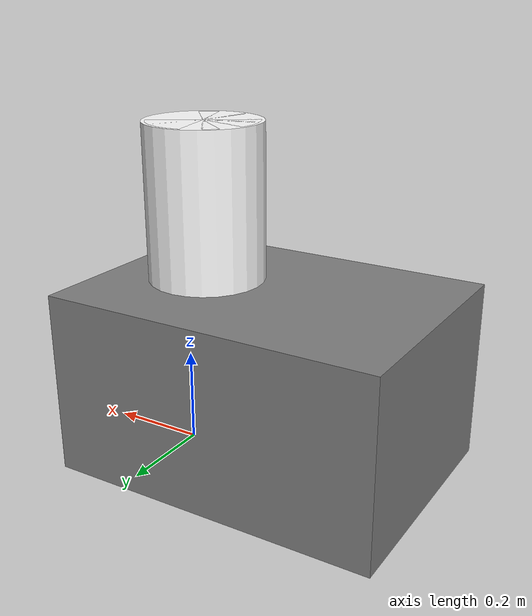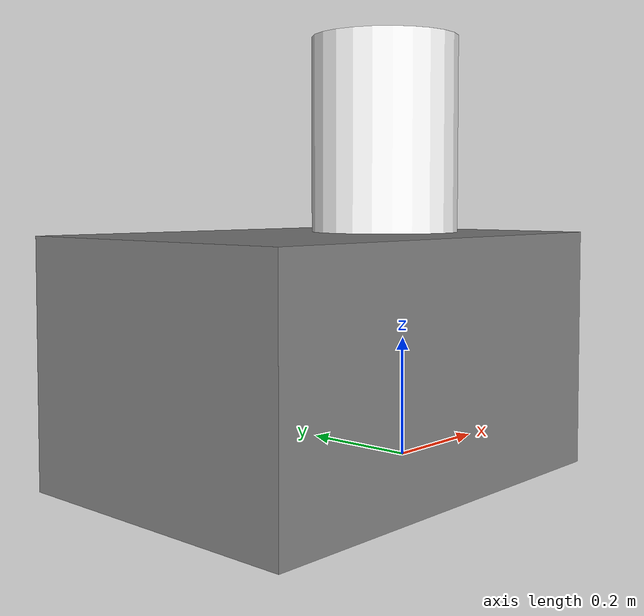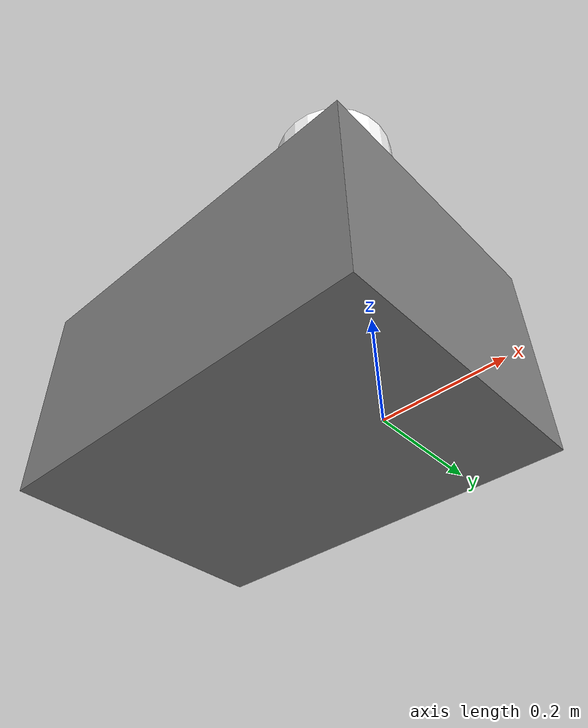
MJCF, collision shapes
<mujoco model="omron_mobile_base">
  <asset>
    <mesh file="meshes/omron_mobile_base/omron_0.obj" name="omron_0_vis" scale="1 1 1" />
    <mesh file="meshes/omron_mobile_base/omron_1.obj" name="omron_1_vis" scale="1 1 1" />
    <mesh file="meshes/omron_mobile_base/omron_2.obj" name="omron_2_vis" scale="1 1 1" />
    <mesh file="meshes/omron_mobile_base/omron_3.obj" name="omron_3_vis" scale="1 1 1" />
    <mesh file="meshes/omron_mobile_base/omron_4.obj" name="omron_4_vis" scale="1 1 1" />
    <mesh file="meshes/omron_mobile_base/omron_5.obj" name="omron_5_vis" scale="1 1 1" />
    <mesh file="meshes/omron_mobile_base/omron_6.obj" name="omron_6_vis" scale="1 1 1" />
    <mesh file="meshes/omron_mobile_base/omron_7.obj" name="omron_7_vis" scale="1 1 1" />
    <material name="Opaque(128,128,128)" specular="0.0" shininess="0.25"
      rgba="0.501961 0.501961 0.501961 1.000000" />
    <material name="Opaque(185,185,185)" specular="0.0" shininess="0.25"
      rgba="0.725490 0.725490 0.725490 1.000000" />
    <material name="Opaque(190,190,190)" specular="0.0" shininess="0.25"
      rgba="0.745098 0.745098 0.745098 1.000000" />
    <material name="Opaque(202,209,236)" specular="0.0" shininess="0.25"
      rgba="0.792157 0.819608 0.925490 1.000000" />
    <material name="Opaque(25,23,27)" specular="0.0" shininess="0.25"
      rgba="0.098039 0.090196 0.105882 1.000000" />
    <material name="Opaque(255,255,255)" specular="0.0" shininess="0.25"
      rgba="1.000000 1.000000 1.000000 1.000000" />
    <material name="Opaque(54,61,65)" specular="0.0" shininess="0.25"
      rgba="0.211765 0.239216 0.254902 1.000000" />
    <material name="Opaque(63,63,63)" specular="0.0" shininess="0.25"
      rgba="0.250980 0.250980 0.250980 1.000000" />
    <material name="Opaque(64,64,64)" specular="0.0" shininess="0.25"
      rgba="0.250980 0.250980 0.250980 1.000000" />
    <material name="Steel_-_Satin" specular="0.0" shininess="0.25"
      rgba="0.627451 0.627451 0.627451 1.000000" />
    <material name="Shell005_001_001_002_001_2" specular="0.5" shininess="0.45"
      rgba="1.000000 1.000000 1.000000 1.000000" />
  </asset>
  <actuator>
    <velocity ctrllimited="true" ctrlrange="-1.00 1.00" joint="joint_mobile_forward" kv="1000"
      name="actuator_mobile_forward" forcelimited="true" forcerange="-600 600" />
    <velocity ctrllimited="true" ctrlrange="-1.00 1.00" joint="joint_mobile_side" kv="1000"
      name="actuator_mobile_side" forcelimited="true" forcerange="-600 600" />
    <velocity ctrllimited="true" ctrlrange="-1.50 1.50" joint="joint_mobile_yaw" kv="1500"
      name="actuator_mobile_yaw" forcelimited="true" forcerange="-600 600" />
    <motor ctrllimited="true" ctrlrange="-100000.0 100000.0" joint="joint_torso_height"
      name="actuator_torso_height" forcelimited="false" />
  </actuator>
  <worldbody>
    <body name="base" pos="0 0 0">
      <body name="fixed_support" pos="-0.05 0 0.50">
        <geom type="cylinder" pos="0 0 0" size="0.12 0.2 0" group="0"
          material="Shell005_001_001_002_001_2" />
        <geom name="fixed_support" type="cylinder" pos="0 0 0" size="0.12 0.2 0" group="1"
          material="Shell005_001_001_002_001_2" />
        <body name="support" pos="0.05 0.0 0.20">
          <!-- add robot here -->
          <site name="center" type="sphere" pos="0 0 0" size="0.01" group="1" rgba="0 0 0 0" />
          <joint name="joint_torso_height" pos="0 0 0" axis="0 0 1" type="slide" limited="true"
            range="0 0.34" damping="0.01" armature="0.0" frictionloss="1000" ref="0" />
          <geom type="cylinder" pos="-0.05 0.0 -0.20" size="0.1125 0.2 0" group="0"
            material="Shell005_001_001_002_001_2" />
          <geom name="support" type="cylinder" pos="-0.05 0.0 -0.20" size="0.1125 0.2 0" group="1"
            material="Shell005_001_001_002_001_2" />

          <camera name="agentview_center" pos="-0.6 0 1.15"
            quat="0.636945903301239 0.3325185477733612 -0.3199238181114197 -0.6175596117973328" />
          <camera name="agentview_left" pos="-0.5 0.35 1.05"
            quat="0.55623853 0.29935253 -0.37678665 -0.6775092" fovy="60" />
          <camera name="agentview_right" pos="-0.5 -0.35 1.05"
            quat="0.6775091886520386 0.3767866790294647 -0.2993525564670563 -0.55623859167099"
            fovy="60" />
          <camera name="frontview" pos="-0.5 0 0.95"
            quat="0.6088936924934387 0.3814677894115448 -0.3673907518386841 -0.5905545353889465"
            fovy="60" />
        </body>
      </body>

      <body name="wheeled_base" pos="-0.20 0 0.192">
        <geom friction="0.95 0.3 0.1" type="mesh" mesh="omron_0_vis" conaffinity="0" contype="0"
          group="1" material="Steel_-_Satin" />
        <geom friction="0.95 0.3 0.1" type="mesh" mesh="omron_1_vis" conaffinity="0" contype="0"
          group="1" material="Opaque(25,23,27)" />
        <geom friction="0.95 0.3 0.1" type="mesh" mesh="omron_2_vis" conaffinity="0" contype="0"
          group="1" material="Opaque(185,185,185)" />
        <geom friction="0.95 0.3 0.1" type="mesh" mesh="omron_3_vis" conaffinity="0" contype="0"
          group="1" material="Opaque(128,128,128)" />
        <geom friction="0.95 0.3 0.1" type="mesh" mesh="omron_4_vis" conaffinity="0" contype="0"
          group="1" material="Opaque(190,190,190)" />
        <geom friction="0.95 0.3 0.1" type="mesh" mesh="omron_5_vis" conaffinity="0" contype="0"
          group="1" material="Opaque(255,255,255)" />
        <geom friction="0.95 0.3 0.1" type="mesh" mesh="omron_6_vis" conaffinity="0" contype="0"
          group="1" material="Opaque(202,209,236)" />
        <geom friction="0.95 0.3 0.1" type="mesh" mesh="omron_7_vis" conaffinity="0" contype="0"
          group="1" material="Opaque(63,63,63)" />

        <geom pos="0 0 0" size="0.35 0.25 0.19" type="box" name="pedestal_feet_col" density="10" />
      </body>

      <joint name="joint_mobile_forward" pos="-0.21 0 0" axis="0 1 0" type="slide" limited="false"
        damping="0" armature="0.0" frictionloss="250" />
      <joint name="joint_mobile_side" pos="-0.21 0 0" axis="1 0 0" type="slide" limited="false"
        damping="0" armature="0.0" frictionloss="250" />
      <joint name="joint_mobile_yaw" pos="-0.21 0 0" axis="0 0 1" type="hinge" limited="false"
        damping="0" armature="0.0" frictionloss="250" />
    </body>
  </worldbody>
</mujoco>
